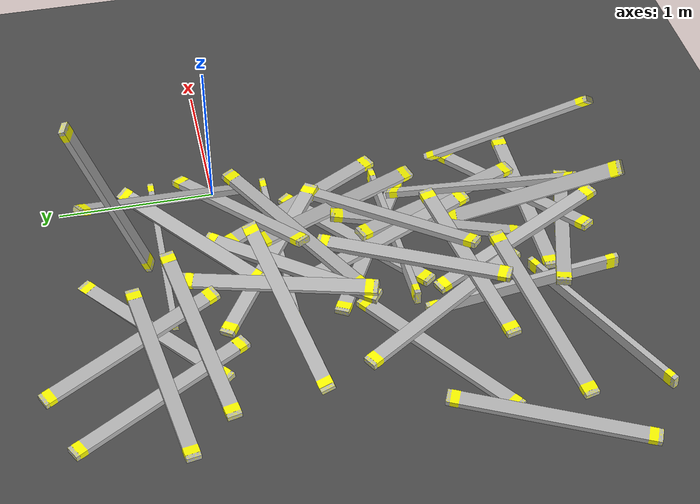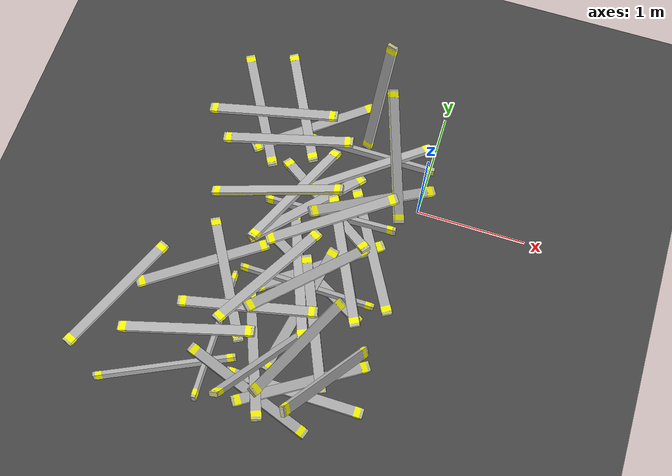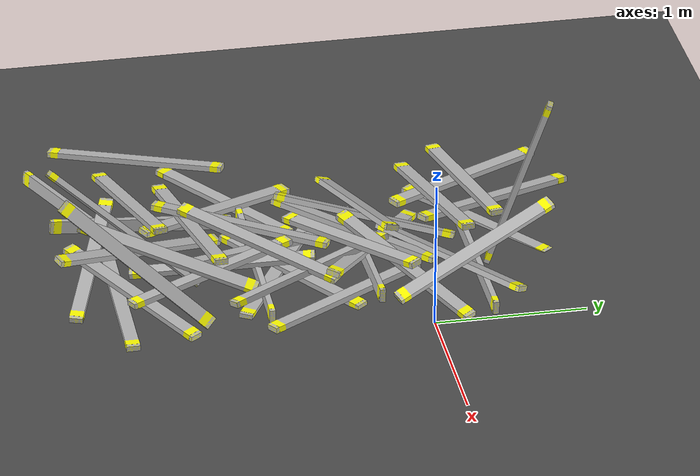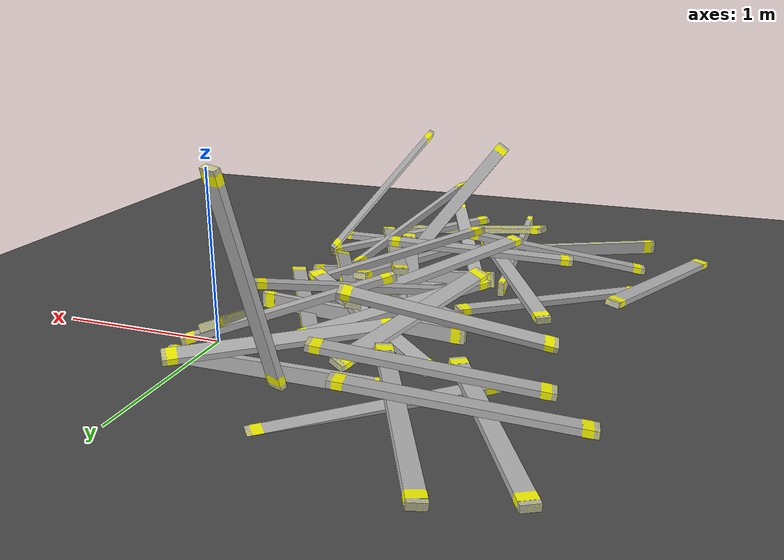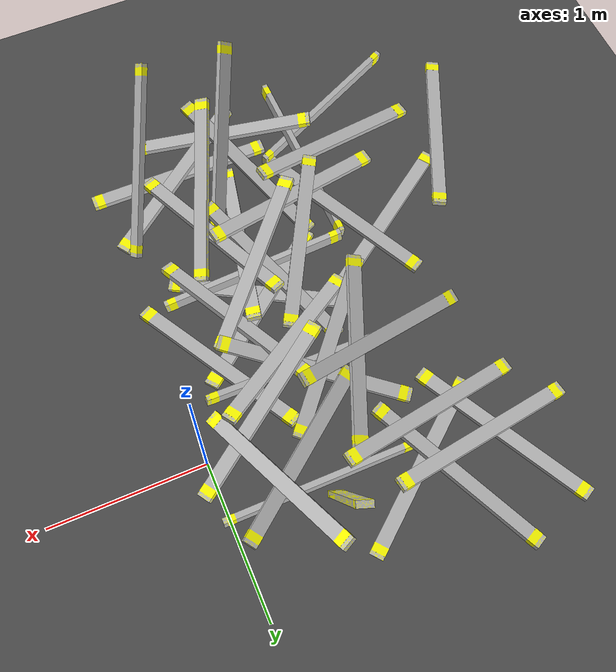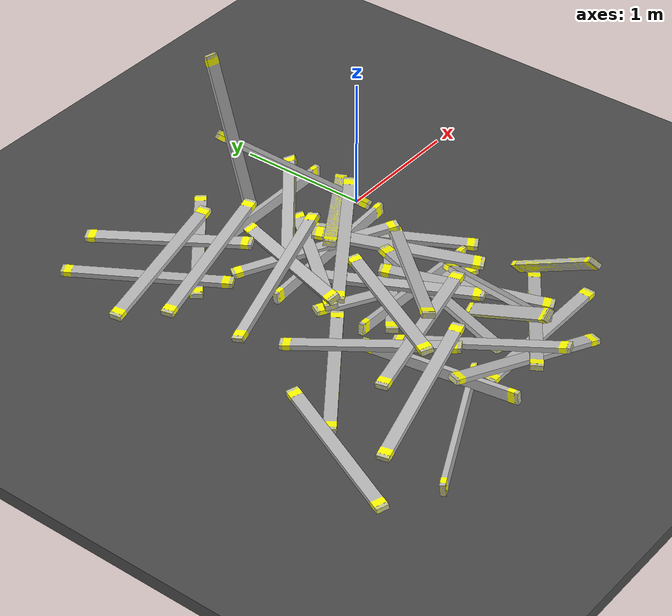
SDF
<sdf version="1.6">
 <world name="default">
  <model name="ground_plane">
   <static>1</static>
   <link name="link">
    <collision name="collision">
     <geometry><plane><normal>0 0 1</normal><size>100 100</size></plane></geometry>
     <surface><friction><ode><mu>100</mu><mu2>50</mu2></ode></friction></surface>
    </collision>
    <visual name="visual">
     <cast_shadows>0</cast_shadows>
     <geometry><plane><normal>0 0 1</normal><size>100 100</size></plane></geometry>
     <material>
      <script><uri>file://media/materials/scripts/gazebo.material</uri><name>Gazebo/Grey</name></script>
     </material>
    </visual>
   </link>
  </model>
  <model name="asphalt_plane">
   <static>1</static>
   <link name="link">
    <collision name="collision"><geometry><box><size>20 20 0.1</size></box></geometry></collision>
    <visual name="visual">
     <cast_shadows>0</cast_shadows>
     <geometry><box><size>20 20 0.1</size></box></geometry>
     <material>
      <script>
       <uri>model://asphalt_plane/materials/scripts</uri>
       <uri>model://asphalt_plane/materials/textures</uri>
       <name>vrc/asphalt</name>
      </script>
     </material>
    </visual>
   </link>
   <pose>0.013797 -0.037077 0 0 -0 0</pose>
  </model>
  <model name="lumber_2x4x48_clone">
   <link name="link">
    <inertial>
     <mass>1.4111</mass>
     <inertia><ixx>0.0011</ixx><ixy>0</ixy><ixz>0</ixz><iyy>0.1771</iyy><iyz>0</iyz><izz>0.1763</izz></inertia>
    </inertial>
    <collision name="collision">
     <geometry><box><size>1.2192 0.038 0.0888</size></box></geometry>
     <surface>
      <bounce><restitution_coefficient>0.01</restitution_coefficient><threshold>5</threshold></bounce>
      <friction><ode><mu>5</mu><mu2>5</mu2></ode></friction>
      <contact>
       <ode>
        <soft_cfm>0.001</soft_cfm>
        <kp>10000</kp>
        <kd>1000</kd>
        <max_vel>0.01</max_vel>
        <min_depth>0.001</min_depth>
       </ode>
      </contact>
     </surface>
    </collision>
    <visual name="visual">
     <geometry><mesh><uri>model://drc_practice_2x4/meshes/2x4x48.dae</uri><scale>1 1 1</scale></mesh></geometry>
    </visual>
   </link>
   <pose>-0.565985 0.393195 0.092503 -0.030887 -0.001061 -0.000131</pose>
  </model>
  <model name="lumber_2x4x48_clone_0">
   <link name="link">
    <inertial>
     <mass>1.4111</mass>
     <inertia><ixx>0.0011</ixx><ixy>0</ixy><ixz>0</ixz><iyy>0.1771</iyy><iyz>0</iyz><izz>0.1763</izz></inertia>
    </inertial>
    <collision name="collision">
     <geometry><box><size>1.2192 0.038 0.0888</size></box></geometry>
     <surface>
      <bounce><restitution_coefficient>0.01</restitution_coefficient><threshold>5</threshold></bounce>
      <friction><ode><mu>5</mu><mu2>5</mu2></ode></friction>
      <contact>
       <ode>
        <soft_cfm>0.001</soft_cfm>
        <kp>10000</kp>
        <kd>1000</kd>
        <max_vel>0.01</max_vel>
        <min_depth>0.001</min_depth>
       </ode>
      </contact>
     </surface>
    </collision>
    <visual name="visual">
     <geometry><mesh><uri>model://drc_practice_2x4/meshes/2x4x48.dae</uri><scale>1 1 1</scale></mesh></geometry>
    </visual>
   </link>
   <pose>-0.734982 -0.323296 0.127238 -0.050361 -0.058179 0.009238</pose>
  </model>
  <model name="lumber_2x4x48_clone_3">
   <link name="link">
    <inertial>
     <mass>1.4111</mass>
     <inertia><ixx>0.0011</ixx><ixy>0</ixy><ixz>0</ixz><iyy>0.1771</iyy><iyz>0</iyz><izz>0.1763</izz></inertia>
    </inertial>
    <collision name="collision">
     <geometry><box><size>1.2192 0.038 0.0888</size></box></geometry>
     <surface>
      <bounce><restitution_coefficient>0.01</restitution_coefficient><threshold>5</threshold></bounce>
      <friction><ode><mu>5</mu><mu2>5</mu2></ode></friction>
      <contact>
       <ode>
        <soft_cfm>0.001</soft_cfm>
        <kp>10000</kp>
        <kd>1000</kd>
        <max_vel>0.01</max_vel>
        <min_depth>0.001</min_depth>
       </ode>
      </contact>
     </surface>
    </collision>
    <visual name="visual">
     <geometry><mesh><uri>model://drc_practice_2x4/meshes/2x4x48.dae</uri><scale>1 1 1</scale></mesh></geometry>
    </visual>
   </link>
   <pose>-0.803257 -0.253167 0.160232 1.47178 -0.148595 -0.631802</pose>
  </model>
  <model name="lumber_2x4x48_clone_3_clone_0">
   <link name="link">
    <inertial>
     <mass>1.4111</mass>
     <inertia><ixx>0.0011</ixx><ixy>0</ixy><ixz>0</ixz><iyy>0.1771</iyy><iyz>0</iyz><izz>0.1763</izz></inertia>
    </inertial>
    <collision name="collision">
     <geometry><box><size>1.2192 0.038 0.0888</size></box></geometry>
     <surface>
      <bounce><restitution_coefficient>0.01</restitution_coefficient><threshold>5</threshold></bounce>
      <friction><ode><mu>5</mu><mu2>5</mu2></ode></friction>
      <contact>
       <ode>
        <soft_cfm>0.001</soft_cfm>
        <kp>10000</kp>
        <kd>1000</kd>
        <max_vel>0.01</max_vel>
        <min_depth>0.001</min_depth>
       </ode>
      </contact>
     </surface>
    </collision>
    <visual name="visual">
     <geometry><mesh><uri>model://drc_practice_2x4/meshes/2x4x48.dae</uri><scale>1 1 1</scale></mesh></geometry>
    </visual>
   </link>
   <pose>-0.522588 0.209963 0.170522 1.23433 0.0071 0.662603</pose>
  </model>
  <model name="lumber_2x4x48_clone_3_clone_0_clone">
   <link name="link">
    <inertial>
     <mass>1.4111</mass>
     <inertia><ixx>0.0011</ixx><ixy>0</ixy><ixz>0</ixz><iyy>0.1771</iyy><iyz>0</iyz><izz>0.1763</izz></inertia>
    </inertial>
    <collision name="collision">
     <geometry><box><size>1.2192 0.038 0.0888</size></box></geometry>
     <surface>
      <bounce><restitution_coefficient>0.01</restitution_coefficient><threshold>5</threshold></bounce>
      <friction><ode><mu>5</mu><mu2>5</mu2></ode></friction>
      <contact>
       <ode>
        <soft_cfm>0.001</soft_cfm>
        <kp>10000</kp>
        <kd>1000</kd>
        <max_vel>0.01</max_vel>
        <min_depth>0.001</min_depth>
       </ode>
      </contact>
     </surface>
    </collision>
    <visual name="visual">
     <geometry><mesh><uri>model://drc_practice_2x4/meshes/2x4x48.dae</uri><scale>1 1 1</scale></mesh></geometry>
    </visual>
   </link>
   <pose>-0.399518 -0.116983 0.215549 1.67306 0.220219 0.589613</pose>
  </model>
  <model name="lumber_2x4x48_clone_3_clone_0_clone_1">
   <link name="link">
    <inertial>
     <mass>1.4111</mass>
     <inertia><ixx>0.0011</ixx><ixy>0</ixy><ixz>0</ixz><iyy>0.1771</iyy><iyz>0</iyz><izz>0.1763</izz></inertia>
    </inertial>
    <collision name="collision">
     <geometry><box><size>1.2192 0.038 0.0888</size></box></geometry>
     <surface>
      <bounce><restitution_coefficient>0.01</restitution_coefficient><threshold>5</threshold></bounce>
      <friction><ode><mu>5</mu><mu2>5</mu2></ode></friction>
      <contact>
       <ode>
        <soft_cfm>0.001</soft_cfm>
        <kp>10000</kp>
        <kd>1000</kd>
        <max_vel>0.01</max_vel>
        <min_depth>0.001</min_depth>
       </ode>
      </contact>
     </surface>
    </collision>
    <visual name="visual">
     <geometry><mesh><uri>model://drc_practice_2x4/meshes/2x4x48.dae</uri><scale>1 1 1</scale></mesh></geometry>
    </visual>
   </link>
   <pose>-0.595379 0.66833 0.634015 1.37252 -1.24634 1.43251</pose>
  </model>
  <model name="lumber_2x4x48_clone_1_clone">
   <link name="link">
    <inertial>
     <mass>1.4111</mass>
     <inertia><ixx>0.0011</ixx><ixy>0</ixy><ixz>0</ixz><iyy>0.1771</iyy><iyz>0</iyz><izz>0.1763</izz></inertia>
    </inertial>
    <collision name="collision">
     <geometry><box><size>1.2192 0.038 0.0888</size></box></geometry>
     <surface>
      <bounce><restitution_coefficient>0.01</restitution_coefficient><threshold>5</threshold></bounce>
      <friction><ode><mu>5</mu><mu2>5</mu2></ode></friction>
      <contact>
       <ode>
        <soft_cfm>0.001</soft_cfm>
        <kp>10000</kp>
        <kd>1000</kd>
        <max_vel>0.01</max_vel>
        <min_depth>0.001</min_depth>
       </ode>
      </contact>
     </surface>
    </collision>
    <visual name="visual">
     <geometry><mesh><uri>model://drc_practice_2x4/meshes/2x4x48.dae</uri><scale>1 1 1</scale></mesh></geometry>
    </visual>
   </link>
   <pose>-0.54045 -1.96689 0.067655 -1.5708 -0 -0.002209</pose>
  </model>
  <model name="lumber_2x4x48_clone_3_clone_0_clone_0_clone">
   <link name="link">
    <inertial>
     <mass>1.4111</mass>
     <inertia><ixx>0.0011</ixx><ixy>0</ixy><ixz>0</ixz><iyy>0.1771</iyy><iyz>0</iyz><izz>0.1763</izz></inertia>
    </inertial>
    <collision name="collision">
     <geometry><box><size>1.2192 0.038 0.0888</size></box></geometry>
     <surface>
      <bounce><restitution_coefficient>0.01</restitution_coefficient><threshold>5</threshold></bounce>
      <friction><ode><mu>5</mu><mu2>5</mu2></ode></friction>
      <contact>
       <ode>
        <soft_cfm>0.001</soft_cfm>
        <kp>10000</kp>
        <kd>1000</kd>
        <max_vel>0.01</max_vel>
        <min_depth>0.001</min_depth>
       </ode>
      </contact>
     </surface>
    </collision>
    <visual name="visual">
     <geometry><mesh><uri>model://drc_practice_2x4/meshes/2x4x48.dae</uri><scale>1 1 1</scale></mesh></geometry>
    </visual>
   </link>
   <pose>-0.498556 -1.8932 0.144119 1.61509 0.125647 0.601302</pose>
  </model>
  <model name="lumber_2x4x48_clone_3_clone_0_clone_0_clone_0_clone">
   <link name="link">
    <inertial>
     <mass>1.4111</mass>
     <inertia><ixx>0.0011</ixx><ixy>0</ixy><ixz>0</ixz><iyy>0.1771</iyy><iyz>0</iyz><izz>0.1763</izz></inertia>
    </inertial>
    <collision name="collision">
     <geometry><box><size>1.2192 0.038 0.0888</size></box></geometry>
     <surface>
      <bounce><restitution_coefficient>0.01</restitution_coefficient><threshold>5</threshold></bounce>
      <friction><ode><mu>5</mu><mu2>5</mu2></ode></friction>
      <contact>
       <ode>
        <soft_cfm>0.001</soft_cfm>
        <kp>10000</kp>
        <kd>1000</kd>
        <max_vel>0.01</max_vel>
        <min_depth>0.001</min_depth>
       </ode>
      </contact>
     </surface>
    </collision>
    <visual name="visual">
     <geometry><mesh><uri>model://drc_practice_2x4/meshes/2x4x48.dae</uri><scale>1 1 1</scale></mesh></geometry>
    </visual>
   </link>
   <pose>-0.907543 -2.09362 0.171348 1.59943 -0.171336 2.82423</pose>
  </model>
  <model name="lumber_2x4x48_clone_3_clone_0_clone_0_clone_0_clone_0">
   <link name="link">
    <inertial>
     <mass>1.4111</mass>
     <inertia><ixx>0.0011</ixx><ixy>0</ixy><ixz>0</ixz><iyy>0.1771</iyy><iyz>0</iyz><izz>0.1763</izz></inertia>
    </inertial>
    <collision name="collision">
     <geometry><box><size>1.2192 0.038 0.0888</size></box></geometry>
     <surface>
      <bounce><restitution_coefficient>0.01</restitution_coefficient><threshold>5</threshold></bounce>
      <friction><ode><mu>5</mu><mu2>5</mu2></ode></friction>
      <contact>
       <ode>
        <soft_cfm>0.001</soft_cfm>
        <kp>10000</kp>
        <kd>1000</kd>
        <max_vel>0.01</max_vel>
        <min_depth>0.001</min_depth>
       </ode>
      </contact>
     </surface>
    </collision>
    <visual name="visual">
     <geometry><mesh><uri>model://drc_practice_2x4/meshes/2x4x48.dae</uri><scale>1 1 1</scale></mesh></geometry>
    </visual>
   </link>
   <pose>-0.726265 -0.90114 0.062275 1.61637 -0.001409 2.62908</pose>
  </model>
  <model name="lumber_2x4x48_clone_0_clone">
   <link name="link">
    <inertial>
     <mass>1.4111</mass>
     <inertia><ixx>0.0011</ixx><ixy>0</ixy><ixz>0</ixz><iyy>0.1771</iyy><iyz>0</iyz><izz>0.1763</izz></inertia>
    </inertial>
    <collision name="collision">
     <geometry><box><size>1.2192 0.038 0.0888</size></box></geometry>
     <surface>
      <bounce><restitution_coefficient>0.01</restitution_coefficient><threshold>5</threshold></bounce>
      <friction><ode><mu>5</mu><mu2>5</mu2></ode></friction>
      <contact>
       <ode>
        <soft_cfm>0.001</soft_cfm>
        <kp>10000</kp>
        <kd>1000</kd>
        <max_vel>0.01</max_vel>
        <min_depth>0.001</min_depth>
       </ode>
      </contact>
     </surface>
    </collision>
    <visual name="visual">
     <geometry><mesh><uri>model://drc_practice_2x4/meshes/2x4x48.dae</uri><scale>1 1 1</scale></mesh></geometry>
    </visual>
   </link>
   <pose>-0.722662 -1.04605 0.133214 0.010439 0.06446 0.012369</pose>
  </model>
  <model name="lumber_2x4x48_clone_3_clone_0_clone_1_clone">
   <link name="link">
    <inertial>
     <mass>1.4111</mass>
     <inertia><ixx>0.0011</ixx><ixy>0</ixy><ixz>0</ixz><iyy>0.1771</iyy><iyz>0</iyz><izz>0.1763</izz></inertia>
    </inertial>
    <collision name="collision">
     <geometry><box><size>1.2192 0.038 0.0888</size></box></geometry>
     <surface>
      <bounce><restitution_coefficient>0.01</restitution_coefficient><threshold>5</threshold></bounce>
      <friction><ode><mu>5</mu><mu2>5</mu2></ode></friction>
      <contact>
       <ode>
        <soft_cfm>0.001</soft_cfm>
        <kp>10000</kp>
        <kd>1000</kd>
        <max_vel>0.01</max_vel>
        <min_depth>0.001</min_depth>
       </ode>
      </contact>
     </surface>
    </collision>
    <visual name="visual">
     <geometry><mesh><uri>model://drc_practice_2x4/meshes/2x4x48.dae</uri><scale>1 1 1</scale></mesh></geometry>
    </visual>
   </link>
   <pose>-0.712223 -1.26616 0.160304 1.66457 -0.125165 1.35625</pose>
  </model>
  <model name="lumber_2x4x48_clone_3_clone_0_clone_1_clone_clone_1">
   <link name="link">
    <inertial>
     <mass>1.4111</mass>
     <inertia><ixx>0.0011</ixx><ixy>0</ixy><ixz>0</ixz><iyy>0.1771</iyy><iyz>0</iyz><izz>0.1763</izz></inertia>
    </inertial>
    <collision name="collision">
     <geometry><box><size>1.2192 0.038 0.0888</size></box></geometry>
     <surface>
      <bounce><restitution_coefficient>0.01</restitution_coefficient><threshold>5</threshold></bounce>
      <friction><ode><mu>5</mu><mu2>5</mu2></ode></friction>
      <contact>
       <ode>
        <soft_cfm>0.001</soft_cfm>
        <kp>10000</kp>
        <kd>1000</kd>
        <max_vel>0.01</max_vel>
        <min_depth>0.001</min_depth>
       </ode>
      </contact>
     </surface>
    </collision>
    <visual name="visual">
     <geometry><mesh><uri>model://drc_practice_2x4/meshes/2x4x48.dae</uri><scale>1 1 1</scale></mesh></geometry>
    </visual>
   </link>
   <pose>-1.33411 -1.70498 0.152795 3.10277 0.099878 1.61615</pose>
  </model>
  <model name="lumber_2x4x48_clone_3_clone_0_clone_1_clone_clone_2">
   <link name="link">
    <inertial>
     <mass>1.4111</mass>
     <inertia><ixx>0.0011</ixx><ixy>0</ixy><ixz>0</ixz><iyy>0.1771</iyy><iyz>0</iyz><izz>0.1763</izz></inertia>
    </inertial>
    <collision name="collision">
     <geometry><box><size>1.2192 0.038 0.0888</size></box></geometry>
     <surface>
      <bounce><restitution_coefficient>0.01</restitution_coefficient><threshold>5</threshold></bounce>
      <friction><ode><mu>5</mu><mu2>5</mu2></ode></friction>
      <contact>
       <ode>
        <soft_cfm>0.001</soft_cfm>
        <kp>10000</kp>
        <kd>1000</kd>
        <max_vel>0.01</max_vel>
        <min_depth>0.001</min_depth>
       </ode>
      </contact>
     </surface>
    </collision>
    <visual name="visual">
     <geometry><mesh><uri>model://drc_practice_2x4/meshes/2x4x48.dae</uri><scale>1 1 1</scale></mesh></geometry>
    </visual>
   </link>
   <pose>-1.65672 -2.09284 0.091985 -0.102749 0.002228 0.448588</pose>
  </model>
  <model name="lumber_2x4x48_clone_3_clone_0_clone_clone">
   <link name="link">
    <inertial>
     <mass>1.4111</mass>
     <inertia><ixx>0.0011</ixx><ixy>0</ixy><ixz>0</ixz><iyy>0.1771</iyy><iyz>0</iyz><izz>0.1763</izz></inertia>
    </inertial>
    <collision name="collision">
     <geometry><box><size>1.2192 0.038 0.0888</size></box></geometry>
     <surface>
      <bounce><restitution_coefficient>0.01</restitution_coefficient><threshold>5</threshold></bounce>
      <friction><ode><mu>5</mu><mu2>5</mu2></ode></friction>
      <contact>
       <ode>
        <soft_cfm>0.001</soft_cfm>
        <kp>10000</kp>
        <kd>1000</kd>
        <max_vel>0.01</max_vel>
        <min_depth>0.001</min_depth>
       </ode>
      </contact>
     </surface>
    </collision>
    <visual name="visual">
     <geometry><mesh><uri>model://drc_practice_2x4/meshes/2x4x48.dae</uri><scale>1 1 1</scale></mesh></geometry>
    </visual>
   </link>
   <pose>-1.67648 -1.09313 0.067386 1.56472 -0.000436 0.618188</pose>
  </model>
  <model name="lumber_2x4x48_clone_3_clone_0_clone_clone_0_clone">
   <link name="link">
    <inertial>
     <mass>1.4111</mass>
     <inertia><ixx>0.0011</ixx><ixy>0</ixy><ixz>0</ixz><iyy>0.1771</iyy><iyz>0</iyz><izz>0.1763</izz></inertia>
    </inertial>
    <collision name="collision">
     <geometry><box><size>1.2192 0.038 0.0888</size></box></geometry>
     <surface>
      <bounce><restitution_coefficient>0.01</restitution_coefficient><threshold>5</threshold></bounce>
      <friction><ode><mu>5</mu><mu2>5</mu2></ode></friction>
      <contact>
       <ode>
        <soft_cfm>0.001</soft_cfm>
        <kp>10000</kp>
        <kd>1000</kd>
        <max_vel>0.01</max_vel>
        <min_depth>0.001</min_depth>
       </ode>
      </contact>
     </surface>
    </collision>
    <visual name="visual">
     <geometry><mesh><uri>model://drc_practice_2x4/meshes/2x4x48.dae</uri><scale>1 1 1</scale></mesh></geometry>
    </visual>
   </link>
   <pose>-0.673631 -0.80957 0.086985 1.59472 0.042096 0.660763</pose>
  </model>
  <model name="lumber_2x4x48_clone_3_clone_0_clone_1_clone_clone_4">
   <link name="link">
    <inertial>
     <mass>1.4111</mass>
     <inertia><ixx>0.0011</ixx><ixy>0</ixy><ixz>0</ixz><iyy>0.1771</iyy><iyz>0</iyz><izz>0.1763</izz></inertia>
    </inertial>
    <collision name="collision">
     <geometry><box><size>1.2192 0.038 0.0888</size></box></geometry>
     <surface>
      <bounce><restitution_coefficient>0.01</restitution_coefficient><threshold>5</threshold></bounce>
      <friction><ode><mu>5</mu><mu2>5</mu2></ode></friction>
      <contact>
       <ode>
        <soft_cfm>0.001</soft_cfm>
        <kp>10000</kp>
        <kd>1000</kd>
        <max_vel>0.01</max_vel>
        <min_depth>0.001</min_depth>
       </ode>
      </contact>
     </surface>
    </collision>
    <visual name="visual">
     <geometry><mesh><uri>model://drc_practice_2x4/meshes/2x4x48.dae</uri><scale>1 1 1</scale></mesh></geometry>
    </visual>
   </link>
   <pose>-1.15745 0.520069 0.050068 1.52126 0.027405 0.681696</pose>
  </model>
  <model name="lumber_2x4x48_clone_3_clone_0_clone_clone_0_clone_0">
   <link name="link">
    <inertial>
     <mass>1.4111</mass>
     <inertia><ixx>0.0011</ixx><ixy>0</ixy><ixz>0</ixz><iyy>0.1771</iyy><iyz>0</iyz><izz>0.1763</izz></inertia>
    </inertial>
    <collision name="collision">
     <geometry><box><size>1.2192 0.038 0.0888</size></box></geometry>
     <surface>
      <bounce><restitution_coefficient>0.01</restitution_coefficient><threshold>5</threshold></bounce>
      <friction><ode><mu>5</mu><mu2>5</mu2></ode></friction>
      <contact>
       <ode>
        <soft_cfm>0.001</soft_cfm>
        <kp>10000</kp>
        <kd>1000</kd>
        <max_vel>0.01</max_vel>
        <min_depth>0.001</min_depth>
       </ode>
      </contact>
     </surface>
    </collision>
    <visual name="visual">
     <geometry><mesh><uri>model://drc_practice_2x4/meshes/2x4x48.dae</uri><scale>1 1 1</scale></mesh></geometry>
    </visual>
   </link>
   <pose>-0.964717 -1.77716 0.175353 -1.65873 -0.171989 -1.19207</pose>
  </model>
  <model name="lumber_2x4x48_clone_3_clone_0_clone_clone_0_clone_0_clone_1">
   <link name="link">
    <inertial>
     <mass>1.4111</mass>
     <inertia><ixx>0.0011</ixx><ixy>0</ixy><ixz>0</ixz><iyy>0.1771</iyy><iyz>0</iyz><izz>0.1763</izz></inertia>
    </inertial>
    <collision name="collision">
     <geometry><box><size>1.2192 0.038 0.0888</size></box></geometry>
     <surface>
      <bounce><restitution_coefficient>0.01</restitution_coefficient><threshold>5</threshold></bounce>
      <friction><ode><mu>5</mu><mu2>5</mu2></ode></friction>
      <contact>
       <ode>
        <soft_cfm>0.001</soft_cfm>
        <kp>10000</kp>
        <kd>1000</kd>
        <max_vel>0.01</max_vel>
        <min_depth>0.001</min_depth>
       </ode>
      </contact>
     </surface>
    </collision>
    <visual name="visual">
     <geometry><mesh><uri>model://drc_practice_2x4/meshes/2x4x48.dae</uri><scale>1 1 1</scale></mesh></geometry>
    </visual>
   </link>
   <pose>-0.814711 -0.979548 0.19887 -1.45918 -0.082076 -1.20545</pose>
  </model>
  <model name="lumber_2x4x48_clone_3_clone_0_clone_clone_0_clone_0_clone_2">
   <link name="link">
    <inertial>
     <mass>1.4111</mass>
     <inertia><ixx>0.0011</ixx><ixy>0</ixy><ixz>0</ixz><iyy>0.1771</iyy><iyz>0</iyz><izz>0.1763</izz></inertia>
    </inertial>
    <collision name="collision">
     <geometry><box><size>1.2192 0.038 0.0888</size></box></geometry>
     <surface>
      <bounce><restitution_coefficient>0.01</restitution_coefficient><threshold>5</threshold></bounce>
      <friction><ode><mu>5</mu><mu2>5</mu2></ode></friction>
      <contact>
       <ode>
        <soft_cfm>0.001</soft_cfm>
        <kp>10000</kp>
        <kd>1000</kd>
        <max_vel>0.01</max_vel>
        <min_depth>0.001</min_depth>
       </ode>
      </contact>
     </surface>
    </collision>
    <visual name="visual">
     <geometry><mesh><uri>model://drc_practice_2x4/meshes/2x4x48.dae</uri><scale>1 1 1</scale></mesh></geometry>
    </visual>
   </link>
   <pose>-1.4128 -1.19466 0.159376 -1.60823 -0.092668 -1.05484</pose>
  </model>
  <model name="lumber_2x4x48_clone_3_clone_0_clone_clone_0_clone_0_clone_6">
   <link name="link">
    <inertial>
     <mass>1.4111</mass>
     <inertia><ixx>0.0011</ixx><ixy>0</ixy><ixz>0</ixz><iyy>0.1771</iyy><iyz>0</iyz><izz>0.1763</izz></inertia>
    </inertial>
    <collision name="collision">
     <geometry><box><size>1.2192 0.038 0.0888</size></box></geometry>
     <surface>
      <bounce><restitution_coefficient>0.01</restitution_coefficient><threshold>5</threshold></bounce>
      <friction><ode><mu>5</mu><mu2>5</mu2></ode></friction>
      <contact>
       <ode>
        <soft_cfm>0.001</soft_cfm>
        <kp>10000</kp>
        <kd>1000</kd>
        <max_vel>0.01</max_vel>
        <min_depth>0.001</min_depth>
       </ode>
      </contact>
     </surface>
    </collision>
    <visual name="visual">
     <geometry><mesh><uri>model://drc_practice_2x4/meshes/2x4x48.dae</uri><scale>1 1 1</scale></mesh></geometry>
    </visual>
   </link>
   <pose>-1.68414 0.535844 0.086215 -1.57866 -0.030657 -1.06819</pose>
  </model>
  <model name="lumber_2x4x48_clone_3_clone_0_clone_clone_0_clone_0_clone_7">
   <link name="link">
    <inertial>
     <mass>1.4111</mass>
     <inertia><ixx>0.0011</ixx><ixy>0</ixy><ixz>0</ixz><iyy>0.1771</iyy><iyz>0</iyz><izz>0.1763</izz></inertia>
    </inertial>
    <collision name="collision">
     <geometry><box><size>1.2192 0.038 0.0888</size></box></geometry>
     <surface>
      <bounce><restitution_coefficient>0.01</restitution_coefficient><threshold>5</threshold></bounce>
      <friction><ode><mu>5</mu><mu2>5</mu2></ode></friction>
      <contact>
       <ode>
        <soft_cfm>0.001</soft_cfm>
        <kp>10000</kp>
        <kd>1000</kd>
        <max_vel>0.01</max_vel>
        <min_depth>0.001</min_depth>
       </ode>
      </contact>
     </surface>
    </collision>
    <visual name="visual">
     <geometry><mesh><uri>model://drc_practice_2x4/meshes/2x4x48.dae</uri><scale>1 1 1</scale></mesh></geometry>
    </visual>
   </link>
   <pose>-1.30758 0.664214 0.125964 -1.45914 -0.088117 -1.10765</pose>
  </model>
  <model name="lumber_2x4x48_clone_3_clone_0_clone_clone_0_clone_0_clone_5_clone">
   <link name="link">
    <inertial>
     <mass>1.4111</mass>
     <inertia><ixx>0.0011</ixx><ixy>0</ixy><ixz>0</ixz><iyy>0.1771</iyy><iyz>0</iyz><izz>0.1763</izz></inertia>
    </inertial>
    <collision name="collision">
     <geometry><box><size>1.2192 0.038 0.0888</size></box></geometry>
     <surface>
      <bounce><restitution_coefficient>0.01</restitution_coefficient><threshold>5</threshold></bounce>
      <friction><ode><mu>5</mu><mu2>5</mu2></ode></friction>
      <contact>
       <ode>
        <soft_cfm>0.001</soft_cfm>
        <kp>10000</kp>
        <kd>1000</kd>
        <max_vel>0.01</max_vel>
        <min_depth>0.001</min_depth>
       </ode>
      </contact>
     </surface>
    </collision>
    <visual name="visual">
     <geometry><mesh><uri>model://drc_practice_2x4/meshes/2x4x48.dae</uri><scale>1 1 1</scale></mesh></geometry>
    </visual>
   </link>
   <pose>-0.280714 -0.534985 0.095877 -1.49617 0.017279 -1.05708</pose>
  </model>
  <model name="lumber_2x4x48_clone_3_clone_0_clone_clone_0_clone_0_clone_0_clone">
   <link name="link">
    <inertial>
     <mass>1.4111</mass>
     <inertia><ixx>0.0011</ixx><ixy>0</ixy><ixz>0</ixz><iyy>0.1771</iyy><iyz>0</iyz><izz>0.1763</izz></inertia>
    </inertial>
    <collision name="collision">
     <geometry><box><size>1.2192 0.038 0.0888</size></box></geometry>
     <surface>
      <bounce><restitution_coefficient>0.01</restitution_coefficient><threshold>5</threshold></bounce>
      <friction><ode><mu>5</mu><mu2>5</mu2></ode></friction>
      <contact>
       <ode>
        <soft_cfm>0.001</soft_cfm>
        <kp>10000</kp>
        <kd>1000</kd>
        <max_vel>0.01</max_vel>
        <min_depth>0.001</min_depth>
       </ode>
      </contact>
     </surface>
    </collision>
    <visual name="visual">
     <geometry><mesh><uri>model://drc_practice_2x4/meshes/2x4x48.dae</uri><scale>1 1 1</scale></mesh></geometry>
    </visual>
   </link>
   <pose>-0.479229 -0.730992 0.201368 -1.3156 0.07574 -1.11519</pose>
  </model>
  <model name="lumber_2x4x48_clone_3_clone_0_clone_clone_0_clone_0_clone_0_clone_0">
   <link name="link">
    <inertial>
     <mass>1.4111</mass>
     <inertia><ixx>0.0011</ixx><ixy>0</ixy><ixz>0</ixz><iyy>0.1771</iyy><iyz>0</iyz><izz>0.1763</izz></inertia>
    </inertial>
    <collision name="collision">
     <geometry><box><size>1.2192 0.038 0.0888</size></box></geometry>
     <surface>
      <bounce><restitution_coefficient>0.01</restitution_coefficient><threshold>5</threshold></bounce>
      <friction><ode><mu>5</mu><mu2>5</mu2></ode></friction>
      <contact>
       <ode>
        <soft_cfm>0.001</soft_cfm>
        <kp>10000</kp>
        <kd>1000</kd>
        <max_vel>0.01</max_vel>
        <min_depth>0.001</min_depth>
       </ode>
      </contact>
     </surface>
    </collision>
    <visual name="visual">
     <geometry><mesh><uri>model://drc_practice_2x4/meshes/2x4x48.dae</uri><scale>1 1 1</scale></mesh></geometry>
    </visual>
   </link>
   <pose>-0.558672 -1.36684 0.203288 -1.48474 0.068147 -1.15903</pose>
  </model>
  <model name="lumber_2x4x48_clone_3_clone_0_clone_clone_0_clone_0_clone_9">
   <link name="link">
    <inertial>
     <mass>1.4111</mass>
     <inertia><ixx>0.0011</ixx><ixy>0</ixy><ixz>0</ixz><iyy>0.1771</iyy><iyz>0</iyz><izz>0.1763</izz></inertia>
    </inertial>
    <collision name="collision">
     <geometry><box><size>1.2192 0.038 0.0888</size></box></geometry>
     <surface>
      <bounce><restitution_coefficient>0.01</restitution_coefficient><threshold>5</threshold></bounce>
      <friction><ode><mu>5</mu><mu2>5</mu2></ode></friction>
      <contact>
       <ode>
        <soft_cfm>0.001</soft_cfm>
        <kp>10000</kp>
        <kd>1000</kd>
        <max_vel>0.01</max_vel>
        <min_depth>0.001</min_depth>
       </ode>
      </contact>
     </surface>
    </collision>
    <visual name="visual">
     <geometry><mesh><uri>model://drc_practice_2x4/meshes/2x4x48.dae</uri><scale>1 1 1</scale></mesh></geometry>
    </visual>
   </link>
   <pose>-0.320383 0.325355 0.32479 -1.85881 0.317772 -1.22385</pose>
  </model>
  <model name="lumber_2x4x48_clone_3_clone_0_clone_clone_0_clone_0_clone_11">
   <link name="link">
    <inertial>
     <mass>1.4111</mass>
     <inertia><ixx>0.0011</ixx><ixy>0</ixy><ixz>0</ixz><iyy>0.1771</iyy><iyz>0</iyz><izz>0.1763</izz></inertia>
    </inertial>
    <collision name="collision">
     <geometry><box><size>1.2192 0.038 0.0888</size></box></geometry>
     <surface>
      <bounce><restitution_coefficient>0.01</restitution_coefficient><threshold>5</threshold></bounce>
      <friction><ode><mu>5</mu><mu2>5</mu2></ode></friction>
      <contact>
       <ode>
        <soft_cfm>0.001</soft_cfm>
        <kp>10000</kp>
        <kd>1000</kd>
        <max_vel>0.01</max_vel>
        <min_depth>0.001</min_depth>
       </ode>
      </contact>
     </surface>
    </collision>
    <visual name="visual">
     <geometry><mesh><uri>model://drc_practice_2x4/meshes/2x4x48.dae</uri><scale>1 1 1</scale></mesh></geometry>
    </visual>
   </link>
   <pose>-0.285736 -1.88539 0.472279 0.707151 -0.621032 -2.0415</pose>
  </model>
  <model name="lumber_2x4x48_clone_3_clone_0_clone_clone_0_clone_0_clone_11_clone_0">
   <link name="link">
    <inertial>
     <mass>1.4111</mass>
     <inertia><ixx>0.0011</ixx><ixy>0</ixy><ixz>0</ixz><iyy>0.1771</iyy><iyz>0</iyz><izz>0.1763</izz></inertia>
    </inertial>
    <collision name="collision">
     <geometry><box><size>1.2192 0.038 0.0888</size></box></geometry>
     <surface>
      <bounce><restitution_coefficient>0.01</restitution_coefficient><threshold>5</threshold></bounce>
      <friction><ode><mu>5</mu><mu2>5</mu2></ode></friction>
      <contact>
       <ode>
        <soft_cfm>0.001</soft_cfm>
        <kp>10000</kp>
        <kd>1000</kd>
        <max_vel>0.01</max_vel>
        <min_depth>0.001</min_depth>
       </ode>
      </contact>
     </surface>
    </collision>
    <visual name="visual">
     <geometry><mesh><uri>model://drc_practice_2x4/meshes/2x4x48.dae</uri><scale>1 1 1</scale></mesh></geometry>
    </visual>
   </link>
   <pose>-0.844954 -1.88958 0.420527 2.32565 -0.584413 -2.03272</pose>
  </model>
  <model name="lumber_2x4x48_clone_3_clone_0_clone_clone_0_clone_0_clone_11_clone_2">
   <link name="link">
    <inertial>
     <mass>1.4111</mass>
     <inertia><ixx>0.0011</ixx><ixy>0</ixy><ixz>0</ixz><iyy>0.1771</iyy><iyz>0</iyz><izz>0.1763</izz></inertia>
    </inertial>
    <collision name="collision">
     <geometry><box><size>1.2192 0.038 0.0888</size></box></geometry>
     <surface>
      <bounce><restitution_coefficient>0.01</restitution_coefficient><threshold>5</threshold></bounce>
      <friction><ode><mu>5</mu><mu2>5</mu2></ode></friction>
      <contact>
       <ode>
        <soft_cfm>0.001</soft_cfm>
        <kp>10000</kp>
        <kd>1000</kd>
        <max_vel>0.01</max_vel>
        <min_depth>0.001</min_depth>
       </ode>
      </contact>
     </surface>
    </collision>
    <visual name="visual">
     <geometry><mesh><uri>model://drc_practice_2x4/meshes/2x4x48.dae</uri><scale>1 1 1</scale></mesh></geometry>
    </visual>
   </link>
   <pose>-0.727662 -1.02077 0.286753 1.44163 -0.129323 -2.31049</pose>
  </model>
  <model name="lumber_2x4x48_clone_3_clone_0_clone_clone_0_clone_0_clone_11_clone_3">
   <link name="link">
    <inertial>
     <mass>1.4111</mass>
     <inertia><ixx>0.0011</ixx><ixy>0</ixy><ixz>0</ixz><iyy>0.1771</iyy><iyz>0</iyz><izz>0.1763</izz></inertia>
    </inertial>
    <collision name="collision">
     <geometry><box><size>1.2192 0.038 0.0888</size></box></geometry>
     <surface>
      <bounce><restitution_coefficient>0.01</restitution_coefficient><threshold>5</threshold></bounce>
      <friction><ode><mu>5</mu><mu2>5</mu2></ode></friction>
      <contact>
       <ode>
        <soft_cfm>0.001</soft_cfm>
        <kp>10000</kp>
        <kd>1000</kd>
        <max_vel>0.01</max_vel>
        <min_depth>0.001</min_depth>
       </ode>
      </contact>
     </surface>
    </collision>
    <visual name="visual">
     <geometry><mesh><uri>model://drc_practice_2x4/meshes/2x4x48.dae</uri><scale>1 1 1</scale></mesh></geometry>
    </visual>
   </link>
   <pose>-0.604083 -1.6349 0.32217 1.19721 -0.279507 -1.95727</pose>
  </model>
  <model name="lumber_2x4x48_clone_3_clone_0_clone_clone_0_clone_0_clone_11_clone_8">
   <link name="link">
    <inertial>
     <mass>1.4111</mass>
     <inertia><ixx>0.0011</ixx><ixy>0</ixy><ixz>0</ixz><iyy>0.1771</iyy><iyz>0</iyz><izz>0.1763</izz></inertia>
    </inertial>
    <collision name="collision">
     <geometry><box><size>1.2192 0.038 0.0888</size></box></geometry>
     <surface>
      <bounce><restitution_coefficient>0.01</restitution_coefficient><threshold>5</threshold></bounce>
      <friction><ode><mu>5</mu><mu2>5</mu2></ode></friction>
      <contact>
       <ode>
        <soft_cfm>0.001</soft_cfm>
        <kp>10000</kp>
        <kd>1000</kd>
        <max_vel>0.01</max_vel>
        <min_depth>0.001</min_depth>
       </ode>
      </contact>
     </surface>
    </collision>
    <visual name="visual">
     <geometry><mesh><uri>model://drc_practice_2x4/meshes/2x4x48.dae</uri><scale>1 1 1</scale></mesh></geometry>
    </visual>
   </link>
   <pose>-0.94111 -0.349452 0.197898 1.72572 -0.078794 -2.27632</pose>
  </model>
  <model name="lumber_2x4x48_clone_3_clone_0_clone_clone_0_clone_0_clone_11_clone_9">
   <link name="link">
    <inertial>
     <mass>1.4111</mass>
     <inertia><ixx>0.0011</ixx><ixy>0</ixy><ixz>0</ixz><iyy>0.1771</iyy><iyz>0</iyz><izz>0.1763</izz></inertia>
    </inertial>
    <collision name="collision">
     <geometry><box><size>1.2192 0.038 0.0888</size></box></geometry>
     <surface>
      <bounce><restitution_coefficient>0.01</restitution_coefficient><threshold>5</threshold></bounce>
      <friction><ode><mu>5</mu><mu2>5</mu2></ode></friction>
      <contact>
       <ode>
        <soft_cfm>0.001</soft_cfm>
        <kp>10000</kp>
        <kd>1000</kd>
        <max_vel>0.01</max_vel>
        <min_depth>0.001</min_depth>
       </ode>
      </contact>
     </surface>
    </collision>
    <visual name="visual">
     <geometry><mesh><uri>model://drc_practice_2x4/meshes/2x4x48.dae</uri><scale>1 1 1</scale></mesh></geometry>
    </visual>
   </link>
   <pose>-1.08155 -0.253066 0.213262 1.91544 -0.134145 -1.9535</pose>
  </model>
  <model name="lumber_2x4x48_clone_3_clone_0_clone_clone_0_clone_0_clone_11_clone_15">
   <link name="link">
    <inertial>
     <mass>1.4111</mass>
     <inertia><ixx>0.0011</ixx><ixy>0</ixy><ixz>0</ixz><iyy>0.1771</iyy><iyz>0</iyz><izz>0.1763</izz></inertia>
    </inertial>
    <collision name="collision">
     <geometry><box><size>1.2192 0.038 0.0888</size></box></geometry>
     <surface>
      <bounce><restitution_coefficient>0.01</restitution_coefficient><threshold>5</threshold></bounce>
      <friction><ode><mu>5</mu><mu2>5</mu2></ode></friction>
      <contact>
       <ode>
        <soft_cfm>0.001</soft_cfm>
        <kp>10000</kp>
        <kd>1000</kd>
        <max_vel>0.01</max_vel>
        <min_depth>0.001</min_depth>
       </ode>
      </contact>
     </surface>
    </collision>
    <visual name="visual">
     <geometry><mesh><uri>model://drc_practice_2x4/meshes/2x4x48.dae</uri><scale>1 1 1</scale></mesh></geometry>
    </visual>
   </link>
   <pose>-0.691493 -0.419719 0.264813 1.52381 0.128336 -2.55481</pose>
  </model>
  <model name="lumber_2x4x48_clone_3_clone_0_clone_clone_0_clone_0_clone_11_clone_14_clone_clone_2">
   <link name="link">
    <inertial>
     <mass>1.4111</mass>
     <inertia><ixx>0.0011</ixx><ixy>0</ixy><ixz>0</ixz><iyy>0.1771</iyy><iyz>0</iyz><izz>0.1763</izz></inertia>
    </inertial>
    <collision name="collision">
     <geometry><box><size>1.2192 0.038 0.0888</size></box></geometry>
     <surface>
      <bounce><restitution_coefficient>0.01</restitution_coefficient><threshold>5</threshold></bounce>
      <friction><ode><mu>5</mu><mu2>5</mu2></ode></friction>
      <contact>
       <ode>
        <soft_cfm>0.001</soft_cfm>
        <kp>10000</kp>
        <kd>1000</kd>
        <max_vel>0.01</max_vel>
        <min_depth>0.001</min_depth>
       </ode>
      </contact>
     </surface>
    </collision>
    <visual name="visual">
     <geometry><mesh><uri>model://drc_practice_2x4/meshes/2x4x48.dae</uri><scale>1 1 1</scale></mesh></geometry>
    </visual>
   </link>
   <pose>-1.25495 -0.274271 0.20902 1.86699 0.214715 -2.92475</pose>
  </model>
  <model name="lumber_2x4x48_clone_3_clone_0_clone_clone_0_clone_0_clone_11_clone_14_clone_clone_3">
   <link name="link">
    <inertial>
     <mass>1.4111</mass>
     <inertia><ixx>0.0011</ixx><ixy>0</ixy><ixz>0</ixz><iyy>0.1771</iyy><iyz>0</iyz><izz>0.1763</izz></inertia>
    </inertial>
    <collision name="collision">
     <geometry><box><size>1.2192 0.038 0.0888</size></box></geometry>
     <surface>
      <bounce><restitution_coefficient>0.01</restitution_coefficient><threshold>5</threshold></bounce>
      <friction><ode><mu>5</mu><mu2>5</mu2></ode></friction>
      <contact>
       <ode>
        <soft_cfm>0.001</soft_cfm>
        <kp>10000</kp>
        <kd>1000</kd>
        <max_vel>0.01</max_vel>
        <min_depth>0.001</min_depth>
       </ode>
      </contact>
     </surface>
    </collision>
    <visual name="visual">
     <geometry><mesh><uri>model://drc_practice_2x4/meshes/2x4x48.dae</uri><scale>1 1 1</scale></mesh></geometry>
    </visual>
   </link>
   <pose>-1.55258 0.516416 0.141499 1.56305 0.114545 -2.97729</pose>
  </model>
  <model name="lumber_2x4x48_clone_3_clone_0_clone_clone_0_clone_0_clone_11_clone_14_clone_clone_4">
   <link name="link">
    <inertial>
     <mass>1.4111</mass>
     <inertia><ixx>0.0011</ixx><ixy>0</ixy><ixz>0</ixz><iyy>0.1771</iyy><iyz>0</iyz><izz>0.1763</izz></inertia>
    </inertial>
    <collision name="collision">
     <geometry><box><size>1.2192 0.038 0.0888</size></box></geometry>
     <surface>
      <bounce><restitution_coefficient>0.01</restitution_coefficient><threshold>5</threshold></bounce>
      <friction><ode><mu>5</mu><mu2>5</mu2></ode></friction>
      <contact>
       <ode>
        <soft_cfm>0.001</soft_cfm>
        <kp>10000</kp>
        <kd>1000</kd>
        <max_vel>0.01</max_vel>
        <min_depth>0.001</min_depth>
       </ode>
      </contact>
     </surface>
    </collision>
    <visual name="visual">
     <geometry><mesh><uri>model://drc_practice_2x4/meshes/2x4x48.dae</uri><scale>1 1 1</scale></mesh></geometry>
    </visual>
   </link>
   <pose>-1.5894 -1.74484 0.174842 1.61044 0.174539 -2.92943</pose>
  </model>
  <model name="lumber_2x4x48_clone_3_clone_0_clone_clone_0_clone_0_clone_11_clone_14_clone_clone_5">
   <link name="link">
    <inertial>
     <mass>1.4111</mass>
     <inertia><ixx>0.0011</ixx><ixy>0</ixy><ixz>0</ixz><iyy>0.1771</iyy><iyz>0</iyz><izz>0.1763</izz></inertia>
    </inertial>
    <collision name="collision">
     <geometry><box><size>1.2192 0.038 0.0888</size></box></geometry>
     <surface>
      <bounce><restitution_coefficient>0.01</restitution_coefficient><threshold>5</threshold></bounce>
      <friction><ode><mu>5</mu><mu2>5</mu2></ode></friction>
      <contact>
       <ode>
        <soft_cfm>0.001</soft_cfm>
        <kp>10000</kp>
        <kd>1000</kd>
        <max_vel>0.01</max_vel>
        <min_depth>0.001</min_depth>
       </ode>
      </contact>
     </surface>
    </collision>
    <visual name="visual">
     <geometry><mesh><uri>model://drc_practice_2x4/meshes/2x4x48.dae</uri><scale>1 1 1</scale></mesh></geometry>
    </visual>
   </link>
   <pose>-1.1418 -1.4118 0.233786 1.64372 0.072299 -2.94749</pose>
  </model>
  <model name="lumber_2x4x48_clone_3_clone_0_clone_clone_0_clone_0_clone_11_clone_14_clone_clone_8">
   <link name="link">
    <inertial>
     <mass>1.4111</mass>
     <inertia><ixx>0.0011</ixx><ixy>0</ixy><ixz>0</ixz><iyy>0.1771</iyy><iyz>0</iyz><izz>0.1763</izz></inertia>
    </inertial>
    <collision name="collision">
     <geometry><box><size>1.2192 0.038 0.0888</size></box></geometry>
     <surface>
      <bounce><restitution_coefficient>0.01</restitution_coefficient><threshold>5</threshold></bounce>
      <friction><ode><mu>5</mu><mu2>5</mu2></ode></friction>
      <contact>
       <ode>
        <soft_cfm>0.001</soft_cfm>
        <kp>10000</kp>
        <kd>1000</kd>
        <max_vel>0.01</max_vel>
        <min_depth>0.001</min_depth>
       </ode>
      </contact>
     </surface>
    </collision>
    <visual name="visual">
     <geometry><mesh><uri>model://drc_practice_2x4/meshes/2x4x48.dae</uri><scale>1 1 1</scale></mesh></geometry>
    </visual>
   </link>
   <pose>-1.32749 0.264889 0.169461 1.62152 0.140404 -2.95347</pose>
  </model>
  <model name="lumber_2x4x48_clone_3_clone_0_clone_clone_0_clone_0_clone_11_clone_clone">
   <link name="link">
    <inertial>
     <mass>1.4111</mass>
     <inertia><ixx>0.0011</ixx><ixy>0</ixy><ixz>0</ixz><iyy>0.1771</iyy><iyz>0</iyz><izz>0.1763</izz></inertia>
    </inertial>
    <collision name="collision">
     <geometry><box><size>1.2192 0.038 0.0888</size></box></geometry>
     <surface>
      <bounce><restitution_coefficient>0.01</restitution_coefficient><threshold>5</threshold></bounce>
      <friction><ode><mu>5</mu><mu2>5</mu2></ode></friction>
      <contact>
       <ode>
        <soft_cfm>0.001</soft_cfm>
        <kp>10000</kp>
        <kd>1000</kd>
        <max_vel>0.01</max_vel>
        <min_depth>0.001</min_depth>
       </ode>
      </contact>
     </surface>
    </collision>
    <visual name="visual">
     <geometry><mesh><uri>model://drc_practice_2x4/meshes/2x4x48.dae</uri><scale>1 1 1</scale></mesh></geometry>
    </visual>
   </link>
   <pose>-1.06083 -1.08593 0.242106 1.69461 -0.057589 -2.07453</pose>
  </model>
  <model name="lumber_2x4x48_clone_3_clone_0_clone_clone_0_clone_0_clone_11_clone_clone_0">
   <link name="link">
    <inertial>
     <mass>1.4111</mass>
     <inertia><ixx>0.0011</ixx><ixy>0</ixy><ixz>0</ixz><iyy>0.1771</iyy><iyz>0</iyz><izz>0.1763</izz></inertia>
    </inertial>
    <collision name="collision">
     <geometry><box><size>1.2192 0.038 0.0888</size></box></geometry>
     <surface>
      <bounce><restitution_coefficient>0.01</restitution_coefficient><threshold>5</threshold></bounce>
      <friction><ode><mu>5</mu><mu2>5</mu2></ode></friction>
      <contact>
       <ode>
        <soft_cfm>0.001</soft_cfm>
        <kp>10000</kp>
        <kd>1000</kd>
        <max_vel>0.01</max_vel>
        <min_depth>0.001</min_depth>
       </ode>
      </contact>
     </surface>
    </collision>
    <visual name="visual">
     <geometry><mesh><uri>model://drc_practice_2x4/meshes/2x4x48.dae</uri><scale>1 1 1</scale></mesh></geometry>
    </visual>
   </link>
   <pose>-2.29576 -1.59439 0.093351 1.67935 0.034492 -1.99027</pose>
  </model>
 </world>
</sdf>
